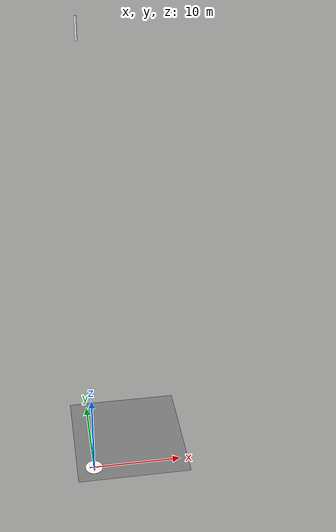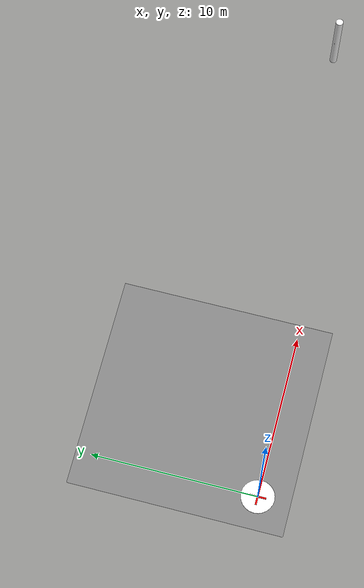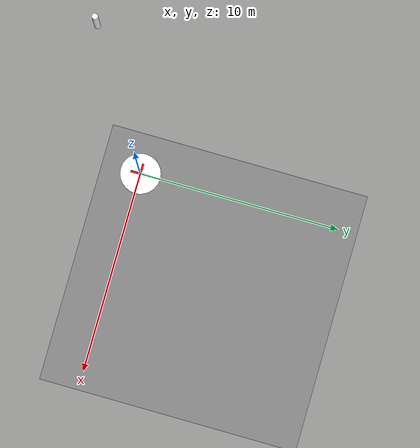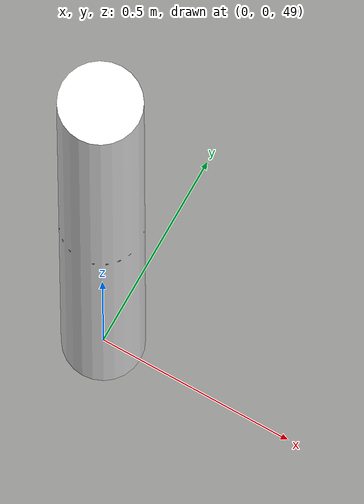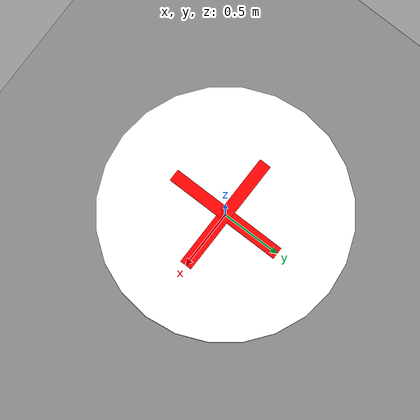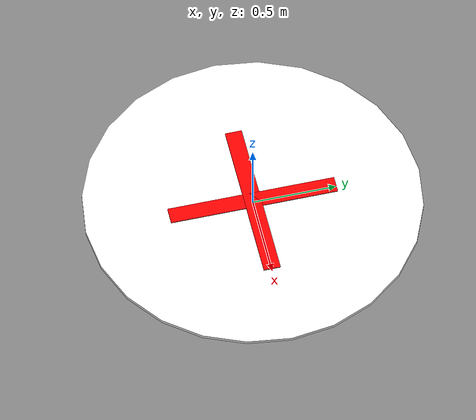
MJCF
<mujoco model="rocket_simulation">
    <option timestep="0.005"/> <!-- 0.005 showed learning. default 0.002-->

    <!-- Assets -->
    <asset>
        <texture name="checker" type="2d" builtin="checker" width="100" height="100" rgb1="0.2 0.2 0.2" rgb2="0.8 0.8 0.8"/>
        <material name="ground" texture="checker" texrepeat="20 20" reflectance="0.2"/>
        <material name="target_material" rgba="1 0 0 0.3"/>
        <material name="rocket_body" rgba="1 1 1 1" emission="1"/>
    </asset>

    <!-- Worldbody -->
    <worldbody>
        <!-- Floor -->
        <geom name="floor" type="plane" pos="0 0 0" size="20 20 0.1" material="ground" />

        <!-- Light Source (castshadow=false to avoid large shadow on floor) -->
        <light name="light_source" pos="0 0 100" dir="0 0 -1" diffuse="1 1 1" castshadow="false"/>
        <light name="ambient" pos="0 0 50" diffuse="0.3 0.3 0.3" ambient="0.2 0.2 0.2" castshadow="false"/>

        <geom name="target_circle" type="cylinder" size="1 0.01" pos="0 0 0.01" material="target_material" rgba="1 1 1 1" contype="0" conaffinity="0"/>

        <geom name="target_x1" type="box" size="0.5 0.05 0.01" pos="0 0 0.015" rgba="1 0 0 1" contype="0" conaffinity="0"/>
        <geom name="target_x2" type="box" size="0.05 0.5 0.01" pos="0 0 0.015" rgba="1 0 0 1" contype="0" conaffinity="0"/>

        <!-- Rocket -->
        <body name="rocket" pos="0 0 50">
            <geom name="rocket_body" type="cylinder" size="0.1 1" material="rocket_body" mass="10"/>
            <joint name="rocket_free" type="free"/>

            <!-- Thruster site -->
            <site name="thruster_site" pos="0 0 -1" size="0.05" rgba="1 0 0 1"/>
            <site name="gyro_site" pos="0 0 0" size="0.1"/>

            <!-- Spotlight on rocket (moves with it) -->
            <light name="rocket_spot" pos="3 3 3" dir="-1 -1 -1" diffuse="0.8 0.8 0.8" specular="0.3 0.3 0.3" cutoff="60" castshadow="false"/>
        </body>
    </worldbody>
    <!-- Actuators with increased power -->
    <actuator>
        <motor name="thrust_x" site="thruster_site" gear="25 0 0 0 0 0" ctrllimited="true" ctrlrange="-1 1"/>
        <motor name="thrust_y" site="thruster_site" gear="0 25 0 0 0 0" ctrllimited="true" ctrlrange="-1 1"/>
        <motor name="thrust_z" site="thruster_site" gear="0 0 200 0 0 0" ctrllimited="true" ctrlrange="0 1"/>
    </actuator>
</mujoco>
